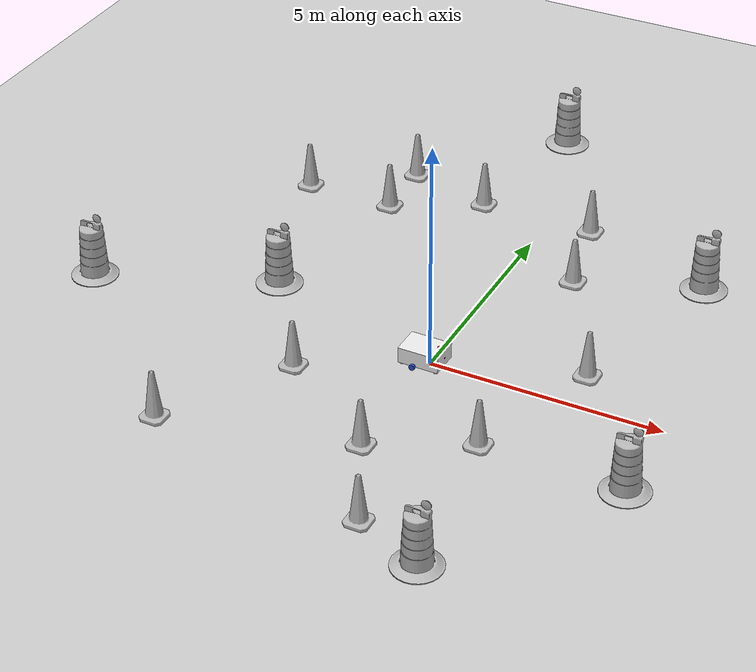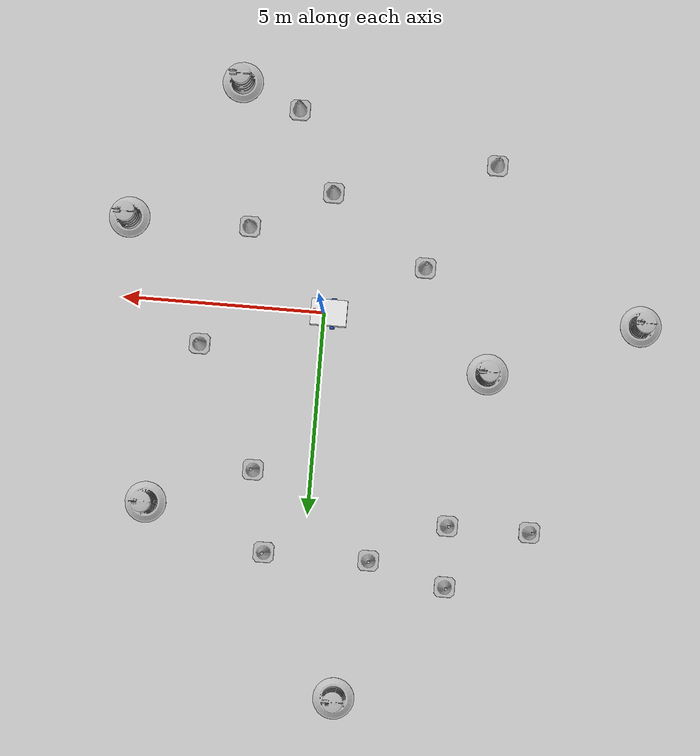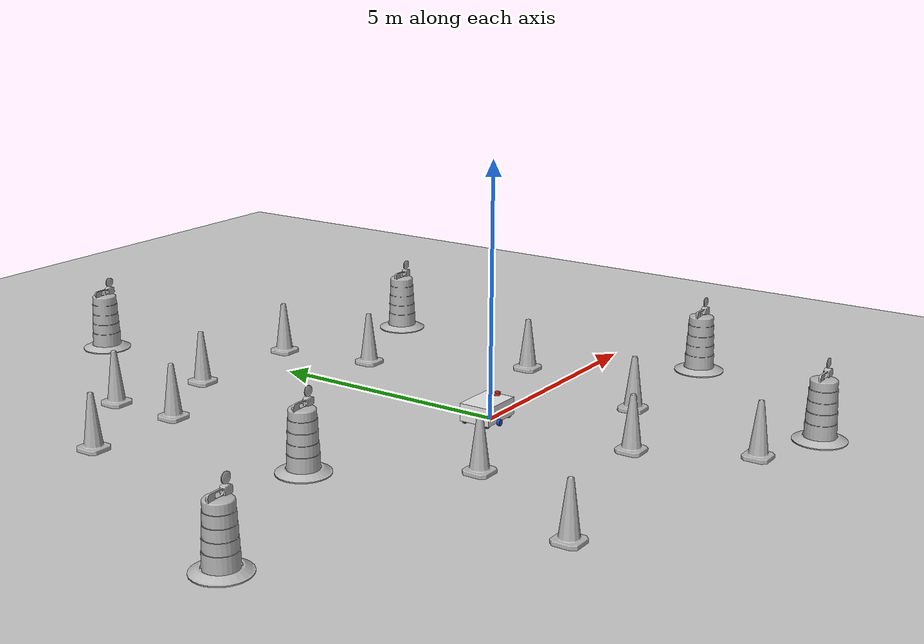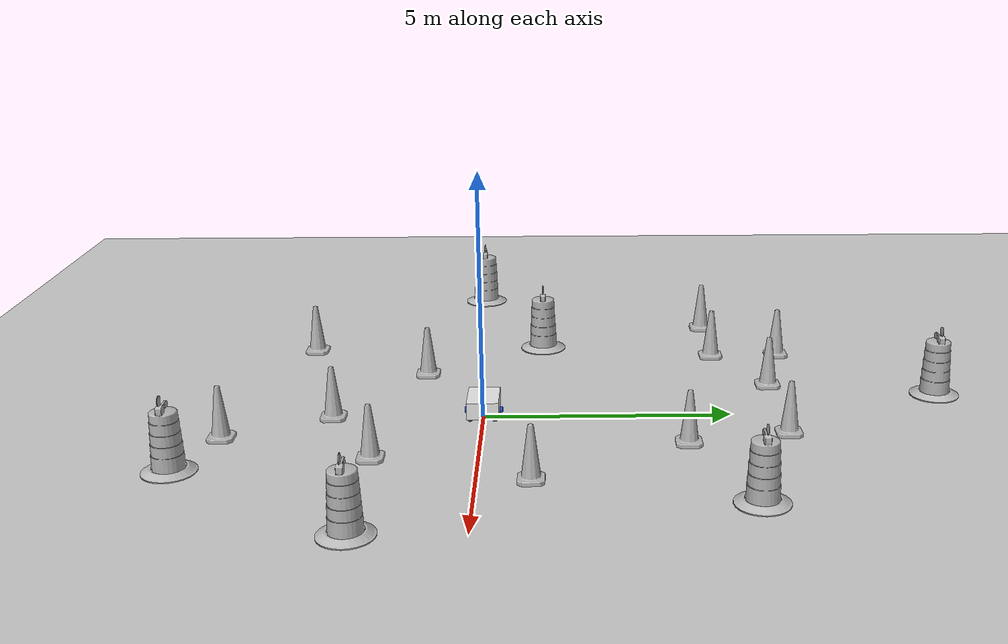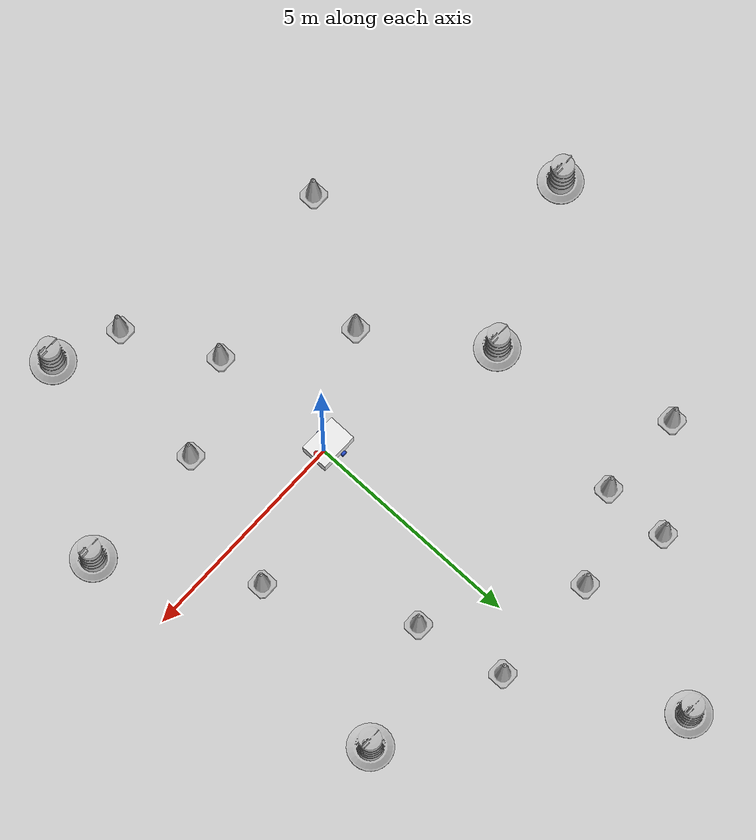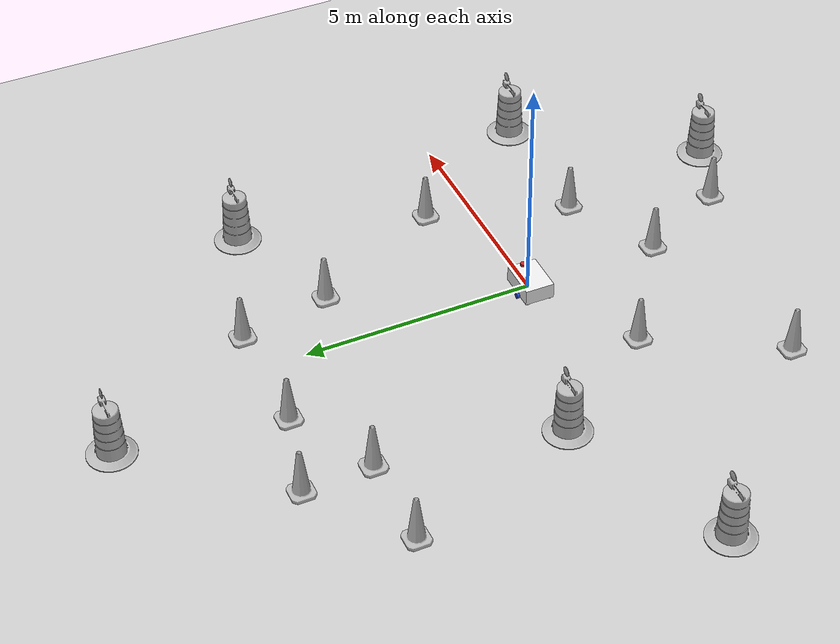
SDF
<sdf version="1.7">
 <world name="default">
  <light name="sun" type="directional">
   <pose>0 0 10 0 -0 0</pose>
   <diffuse>0.8 0.8 0.8 1</diffuse>
   <specular>0.2 0.2 0.2 1</specular>
   <attenuation>
    <range>1000</range>
    <constant>0.9</constant>
    <linear>0.01</linear>
    <quadratic>0.001</quadratic>
   </attenuation>
   <direction>-0.5 0.1 -0.9</direction>
   <spot><inner_angle>0</inner_angle><outer_angle>0</outer_angle><falloff>0</falloff></spot>
  </light>
  <model name="ground_plane">
   <static>1</static>
   <link name="link">
    <collision name="collision">
     <geometry><plane><normal>0 0 1</normal><size>100 100</size></plane></geometry>
     <surface>
      <contact><collide_bitmask>65535</collide_bitmask></contact>
      <friction><ode><mu>100</mu><mu2>50</mu2></ode></friction>
     </surface>
    </collision>
    <visual name="visual">
     <cast_shadows>0</cast_shadows>
     <geometry><plane><normal>0 0 1</normal><size>100 100</size></plane></geometry>
     <material>
      <script><uri>file://media/materials/scripts/gazebo.material</uri><name>Gazebo/Grey</name></script>
     </material>
    </visual>
   </link>
  </model>
  <gravity>0 0 -9.8</gravity>
  <magnetic_field>6e-06 2.3e-05 -4.2e-05</magnetic_field>
  <atmosphere type="adiabatic"/>
  <physics type="ode">
   <max_step_size>0.001</max_step_size>
   <real_time_factor>1</real_time_factor>
   <real_time_update_rate>1000</real_time_update_rate>
  </physics>
  <scene><ambient>0.4 0.4 0.4 1</ambient><background>0.7 0.7 0.7 1</background><shadows>1</shadows></scene>
  <spherical_coordinates>
   <surface_model>EARTH_WGS84</surface_model>
   <latitude_deg>0</latitude_deg>
   <longitude_deg>0</longitude_deg>
   <elevation>0</elevation>
   <heading_deg>0</heading_deg>
  </spherical_coordinates>
  <model name="my_bot">
   <link name="base_link">
    <inertial>
     <pose>0.004176 0 0.169176 0 -0 0</pose>
     <mass>8.5</mass>
     <inertia>
      <ixx>0.396651</ixx>
      <ixy>0</ixy>
      <ixz>-0.00748424</ixz>
      <iyy>0.695355</iyy>
      <iyz>0</iyz>
      <izz>0.895659</izz>
     </inertia>
    </inertial>
    <collision name="base_link_fixed_joint_lump__chassis_collision">
     <pose>0 0 0.175 0 -0 0</pose>
     <geometry><box><size>0.89 0.64 0.35</size></box></geometry>
    </collision>
    <collision name="base_link_fixed_joint_lump__back_caster_left_wheel_collision_1">
     <pose>-0.375 -0.25 0 0 -0 0</pose>
     <geometry><sphere><radius>0.0625</radius></sphere></geometry>
     <surface><friction><ode><mu>0.001</mu><mu2>0.001</mu2></ode></friction></surface>
    </collision>
    <collision name="base_link_fixed_joint_lump__back_caster_right_wheel_collision_2">
     <pose>-0.375 0.25 0 0 -0 0</pose>
     <geometry><sphere><radius>0.0625</radius></sphere></geometry>
    </collision>
    <collision name="base_link_fixed_joint_lump__front_caster_left_wheel_collision_3">
     <pose>0.375 0.25 0 0 -0 0</pose>
     <geometry><sphere><radius>0.0625</radius></sphere></geometry>
    </collision>
    <collision name="base_link_fixed_joint_lump__front_caster_wheel_collision_4">
     <pose>0.375 -0.25 0 0 -0 0</pose>
     <geometry><sphere><radius>0.0625</radius></sphere></geometry>
    </collision>
    <collision name="base_link_fixed_joint_lump__laser_frame_collision_5">
     <pose>0.355 0 0.38 0 -0 0</pose>
     <geometry><cylinder><length>0.06</length><radius>0.06265</radius></cylinder></geometry>
    </collision>
    <visual name="base_link_fixed_joint_lump__chassis_visual">
     <pose>0 0 0.175 0 -0 0</pose>
     <geometry><box><size>0.89 0.64 0.35</size></box></geometry>
     <material>
      <script><name>Gazebo/White</name><uri>file://media/materials/scripts/gazebo.material</uri></script>
     </material>
    </visual>
    <visual name="base_link_fixed_joint_lump__back_caster_left_wheel_visual_1">
     <pose>-0.375 -0.25 0 0 -0 0</pose>
     <geometry><sphere><radius>0.0625</radius></sphere></geometry>
     <material>
      <script><name>Gazebo/Black</name><uri>file://media/materials/scripts/gazebo.material</uri></script>
     </material>
    </visual>
    <visual name="base_link_fixed_joint_lump__back_caster_right_wheel_visual_2">
     <pose>-0.375 0.25 0 0 -0 0</pose>
     <geometry><sphere><radius>0.0625</radius></sphere></geometry>
     <material>
      <script><name>Gazebo/Black</name><uri>file://media/materials/scripts/gazebo.material</uri></script>
     </material>
    </visual>
    <visual name="base_link_fixed_joint_lump__camera_link_visual_3">
     <pose>0.45 0 0.18 0 -0 0</pose>
     <geometry><box><size>0.01 0.03 0.03</size></box></geometry>
     <material>
      <script><name>Gazebo/Red</name><uri>file://media/materials/scripts/gazebo.material</uri></script>
     </material>
    </visual>
    <visual name="base_link_fixed_joint_lump__front_caster_left_wheel_visual_4">
     <pose>0.375 0.25 0 0 -0 0</pose>
     <geometry><sphere><radius>0.0625</radius></sphere></geometry>
     <material>
      <script><name>Gazebo/Black</name><uri>file://media/materials/scripts/gazebo.material</uri></script>
     </material>
    </visual>
    <visual name="base_link_fixed_joint_lump__front_caster_wheel_visual_5">
     <pose>0.375 -0.25 0 0 -0 0</pose>
     <geometry><sphere><radius>0.0625</radius></sphere></geometry>
     <material>
      <script><name>Gazebo/Black</name><uri>file://media/materials/scripts/gazebo.material</uri></script>
     </material>
    </visual>
    <visual name="base_link_fixed_joint_lump__laser_frame_visual_6">
     <pose>0.355 0 0.38 0 -0 0</pose>
     <geometry><cylinder><length>0.06</length><radius>0.06265</radius></cylinder></geometry>
     <material>
      <script><name>Gazebo/Red</name><uri>file://media/materials/scripts/gazebo.material</uri></script>
     </material>
    </visual>
    <sensor name="camera" type="camera">
     <visualize>1</visualize>
     <update_rate>10</update_rate>
     <camera>
      <horizontal_fov>1.089</horizontal_fov>
      <image><format>R8G8B8</format><width>640</width><height>480</height></image>
      <clip><near>0.05</near><far>8</far></clip>
     </camera>
     <plugin name="camera_controller" filename="libgazebo_ros_camera.so">
      <frame_name>camera_link_optical</frame_name>
     </plugin>
     <pose>0.45 0 0.18 0 -0 0</pose>
    </sensor>
    <sensor name="laser" type="ray">
     <visualize>1</visualize>
     <update_rate>10</update_rate>
     <ray>
      <scan>
       <horizontal>
        <samples>360</samples>
        <min_angle>-3.14</min_angle>
        <max_angle>3.14</max_angle>
        <resolution>1</resolution>
       </horizontal>
       <vertical><samples>1</samples><min_angle>0</min_angle><max_angle>0</max_angle></vertical>
      </scan>
      <range><min>0.3</min><max>12</max></range>
     </ray>
     <plugin name="laser_controller" filename="libgazebo_ros_ray_sensor.so">
      <ros><argument>~/out:=scan</argument></ros>
      <output_type>sensor_msgs/LaserScan</output_type>
      <frame_name>laser_frame</frame_name>
     </plugin>
     <pose>0.355 0 0.38 0 -0 0</pose>
    </sensor>
   </link>
   <joint name="left_wheel_joint" type="revolute">
    <pose relative_to="base_link">-0.103 0.35 0 -1.5708 0 0</pose>
    <parent>base_link</parent>
    <child>left_wheel</child>
    <axis>
     <xyz>0 0 1</xyz>
     <limit><lower>-1e+16</lower><upper>1e+16</upper></limit>
     <dynamics><spring_reference>0</spring_reference><spring_stiffness>0</spring_stiffness></dynamics>
    </axis>
   </joint>
   <link name="left_wheel">
    <pose relative_to="left_wheel_joint">0 0 0 0 -0 0</pose>
    <inertial>
     <mass>0.1</mass>
     <inertia>
      <ixx>0.000127969</ixx>
      <ixy>0</ixy>
      <ixz>0</ixz>
      <iyy>0.000127969</iyy>
      <iyz>0</iyz>
      <izz>0.000195938</izz>
     </inertia>
    </inertial>
    <collision name="left_wheel_collision">
     <geometry><cylinder><length>0.06</length><radius>0.0626</radius></cylinder></geometry>
    </collision>
    <visual name="left_wheel_visual">
     <geometry><cylinder><length>0.06</length><radius>0.0626</radius></cylinder></geometry>
     <material>
      <script><name>Gazebo/Blue</name><uri>file://media/materials/scripts/gazebo.material</uri></script>
     </material>
    </visual>
   </link>
   <joint name="right_wheel_joint" type="revolute">
    <pose relative_to="base_link">-0.103 -0.35 0 1.5708 -0 0</pose>
    <parent>base_link</parent>
    <child>right_wheel</child>
    <axis>
     <xyz>0 0 -1</xyz>
     <limit><lower>-1e+16</lower><upper>1e+16</upper></limit>
     <dynamics><spring_reference>0</spring_reference><spring_stiffness>0</spring_stiffness></dynamics>
    </axis>
   </joint>
   <link name="right_wheel">
    <pose relative_to="right_wheel_joint">0 0 0 0 -0 0</pose>
    <inertial>
     <mass>0.1</mass>
     <inertia>
      <ixx>0.000127969</ixx>
      <ixy>0</ixy>
      <ixz>0</ixz>
      <iyy>0.000127969</iyy>
      <iyz>0</iyz>
      <izz>0.000195938</izz>
     </inertia>
    </inertial>
    <collision name="right_wheel_collision">
     <geometry><cylinder><length>0.06</length><radius>0.0626</radius></cylinder></geometry>
    </collision>
    <visual name="right_wheel_visual">
     <geometry><cylinder><length>0.06</length><radius>0.0626</radius></cylinder></geometry>
     <material>
      <script><name>Gazebo/Blue</name><uri>file://media/materials/scripts/gazebo.material</uri></script>
     </material>
    </visual>
   </link>
   <static>0</static>
   <plugin name="gazebo_ros2_control" filename="libgazebo_ros2_control.so">
    <parameters>/home/furkan/dev_ws/install/murphy_bot/share/murphy_bot/config/my_controllers.yaml</parameters>
    <parameters>/home/furkan/dev_ws/install/murphy_bot/share/murphy_bot/config/gaz_ros2_ctl_use_sim.yaml</parameters>
   </plugin>
   <pose>-0.127209 0.002681 0.06257 0 0.000186 -0.007531</pose>
  </model>
  <model name="Construction Barrel">
   <link name="link">
    <inertial>
     <pose>0 0 0.4 0 -0 0</pose>
     <mass>500</mass>
     <inertia><ixx>51.2096</ixx><iyy>51.2096</iyy><izz>25</izz><ixy>0</ixy><ixz>0</ixz><iyz>0</iyz></inertia>
    </inertial>
    <collision name="collision">
     <geometry><mesh><uri>model://construction_barrel/meshes/construction_barrel.dae</uri></mesh></geometry>
    </collision>
    <visual name="visual">
     <geometry><mesh><uri>model://construction_barrel/meshes/construction_barrel.dae</uri></mesh></geometry>
    </visual>
   </link>
   <pose>-4.14871 1.1927 -0 0 0 -2.5e-05</pose>
  </model>
  <model name="Construction Cone">
   <link name="link">
    <collision name="collision">
     <geometry>
      <mesh><scale>10 10 10</scale><uri>model://construction_cone/meshes/construction_cone.dae</uri></mesh>
     </geometry>
    </collision>
    <visual name="visual">
     <geometry>
      <mesh><scale>10 10 10</scale><uri>model://construction_cone/meshes/construction_cone.dae</uri></mesh>
     </geometry>
    </visual>
    <inertial>
     <inertia><ixx>1</ixx><ixy>0</ixy><ixz>0</ixz><iyy>1</iyy><iyz>0</iyz><izz>1</izz></inertia>
     <mass>1</mass>
    </inertial>
   </link>
   <pose>-2.41385 -1.31454 0 -0 -0 -0</pose>
  </model>
  <model name="Construction Cone_clone">
   <link name="link">
    <collision name="collision">
     <geometry>
      <mesh><scale>10 10 10</scale><uri>model://construction_cone/meshes/construction_cone.dae</uri></mesh>
     </geometry>
    </collision>
    <visual name="visual">
     <geometry>
      <mesh><scale>10 10 10</scale><uri>model://construction_cone/meshes/construction_cone.dae</uri></mesh>
     </geometry>
    </visual>
    <inertial>
     <inertia><ixx>1</ixx><ixy>0</ixy><ixz>0</ixz><iyy>1</iyy><iyz>0</iyz><izz>1</izz></inertia>
     <mass>1</mass>
    </inertial>
   </link>
   <pose>-5.47303 5 -0 0 -1e-06 0</pose>
  </model>
  <model name="Construction Cone_clone_0">
   <link name="link">
    <collision name="collision">
     <geometry>
      <mesh><scale>10 10 10</scale><uri>model://construction_cone/meshes/construction_cone.dae</uri></mesh>
     </geometry>
    </collision>
    <visual name="visual">
     <geometry>
      <mesh><scale>10 10 10</scale><uri>model://construction_cone/meshes/construction_cone.dae</uri></mesh>
     </geometry>
    </visual>
    <inertial>
     <inertia><ixx>1</ixx><ixy>0</ixy><ixz>0</ixz><iyy>1</iyy><iyz>0</iyz><izz>1</izz></inertia>
     <mass>1</mass>
    </inertial>
   </link>
   <pose>-3.45127 5 -1e-05 -1e-06 0 0</pose>
  </model>
  <model name="Construction Cone_clone_1">
   <link name="link">
    <collision name="collision">
     <geometry>
      <mesh><scale>10 10 10</scale><uri>model://construction_cone/meshes/construction_cone.dae</uri></mesh>
     </geometry>
    </collision>
    <visual name="visual">
     <geometry>
      <mesh><scale>10 10 10</scale><uri>model://construction_cone/meshes/construction_cone.dae</uri></mesh>
     </geometry>
    </visual>
    <inertial>
     <inertia><ixx>1</ixx><ixy>0</ixy><ixz>0</ixz><iyy>1</iyy><iyz>0</iyz><izz>1</izz></inertia>
     <mass>1</mass>
    </inertial>
   </link>
   <pose>-1.58364 6 -0 0 -0 0</pose>
  </model>
  <model name="Construction Cone_clone_2">
   <link name="link">
    <collision name="collision">
     <geometry>
      <mesh><scale>10 10 10</scale><uri>model://construction_cone/meshes/construction_cone.dae</uri></mesh>
     </geometry>
    </collision>
    <visual name="visual">
     <geometry>
      <mesh><scale>10 10 10</scale><uri>model://construction_cone/meshes/construction_cone.dae</uri></mesh>
     </geometry>
    </visual>
    <inertial>
     <inertia><ixx>1</ixx><ixy>0</ixy><ixz>0</ixz><iyy>1</iyy><iyz>0</iyz><izz>1</izz></inertia>
     <mass>1</mass>
    </inertial>
   </link>
   <pose>-3.49885 6.49463 -0 0 -0 0</pose>
  </model>
  <model name="Construction Cone_clone_3">
   <link name="link">
    <collision name="collision">
     <geometry>
      <mesh><scale>10 10 10</scale><uri>model://construction_cone/meshes/construction_cone.dae</uri></mesh>
     </geometry>
    </collision>
    <visual name="visual">
     <geometry>
      <mesh><scale>10 10 10</scale><uri>model://construction_cone/meshes/construction_cone.dae</uri></mesh>
     </geometry>
    </visual>
    <inertial>
     <inertia><ixx>1</ixx><ixy>0</ixy><ixz>0</ixz><iyy>1</iyy><iyz>0</iyz><izz>1</izz></inertia>
     <mass>1</mass>
    </inertial>
   </link>
   <pose>1 6 0 -0 -0 -0</pose>
  </model>
  <model name="Construction Cone_clone_4">
   <link name="link">
    <collision name="collision">
     <geometry>
      <mesh><scale>10 10 10</scale><uri>model://construction_cone/meshes/construction_cone.dae</uri></mesh>
     </geometry>
    </collision>
    <visual name="visual">
     <geometry>
      <mesh><scale>10 10 10</scale><uri>model://construction_cone/meshes/construction_cone.dae</uri></mesh>
     </geometry>
    </visual>
    <inertial>
     <inertia><ixx>1</ixx><ixy>0</ixy><ixz>0</ixz><iyy>1</iyy><iyz>0</iyz><izz>1</izz></inertia>
     <mass>1</mass>
    </inertial>
   </link>
   <pose>-0 -3 -0 0 -0 0</pose>
  </model>
  <model name="Construction Cone_clone_5">
   <link name="link">
    <collision name="collision">
     <geometry>
      <mesh><scale>10 10 10</scale><uri>model://construction_cone/meshes/construction_cone.dae</uri></mesh>
     </geometry>
    </collision>
    <visual name="visual">
     <geometry>
      <mesh><scale>10 10 10</scale><uri>model://construction_cone/meshes/construction_cone.dae</uri></mesh>
     </geometry>
    </visual>
    <inertial>
     <inertia><ixx>1</ixx><ixy>0</ixy><ixz>0</ixz><iyy>1</iyy><iyz>0</iyz><izz>1</izz></inertia>
     <mass>1</mass>
    </inertial>
   </link>
   <pose>2 -2 -0 0 -1e-06 0</pose>
  </model>
  <model name="Construction Cone_clone_6">
   <link name="link">
    <collision name="collision">
     <geometry>
      <mesh><scale>10 10 10</scale><uri>model://construction_cone/meshes/construction_cone.dae</uri></mesh>
     </geometry>
    </collision>
    <visual name="visual">
     <geometry>
      <mesh><scale>10 10 10</scale><uri>model://construction_cone/meshes/construction_cone.dae</uri></mesh>
     </geometry>
    </visual>
    <inertial>
     <inertia><ixx>1</ixx><ixy>0</ixy><ixz>0</ixz><iyy>1</iyy><iyz>0</iyz><izz>1</izz></inertia>
     <mass>1</mass>
    </inertial>
   </link>
   <pose>3 1 -0 0 -0 0</pose>
  </model>
  <model name="Construction Cone_clone_7">
   <link name="link">
    <collision name="collision">
     <geometry>
      <mesh><scale>10 10 10</scale><uri>model://construction_cone/meshes/construction_cone.dae</uri></mesh>
     </geometry>
    </collision>
    <visual name="visual">
     <geometry>
      <mesh><scale>10 10 10</scale><uri>model://construction_cone/meshes/construction_cone.dae</uri></mesh>
     </geometry>
    </visual>
    <inertial>
     <inertia><ixx>1</ixx><ixy>0</ixy><ixz>0</ixz><iyy>1</iyy><iyz>0</iyz><izz>1</izz></inertia>
     <mass>1</mass>
    </inertial>
   </link>
   <pose>1.42736 4 -0 0 -0 0</pose>
  </model>
  <model name="Construction Barrel_0">
   <link name="link">
    <inertial>
     <pose>0 0 0.4 0 -0 0</pose>
     <mass>500</mass>
     <inertia><ixx>51.2096</ixx><iyy>51.2096</iyy><izz>25</izz><ixy>0</ixy><ixz>0</ixz><iyz>0</iyz></inertia>
    </inertial>
    <collision name="collision">
     <geometry><mesh><uri>model://construction_barrel/meshes/construction_barrel.dae</uri></mesh></geometry>
    </collision>
    <visual name="visual">
     <geometry><mesh><uri>model://construction_barrel/meshes/construction_barrel.dae</uri></mesh></geometry>
    </visual>
   </link>
   <pose>-7.83625 -0.291337 -0 1e-06 -1e-06 -1.2e-05</pose>
  </model>
  <model name="Construction Cone_clone_8">
   <link name="link">
    <collision name="collision">
     <geometry>
      <mesh><scale>10 10 10</scale><uri>model://construction_cone/meshes/construction_cone.dae</uri></mesh>
     </geometry>
    </collision>
    <visual name="visual">
     <geometry>
      <mesh><scale>10 10 10</scale><uri>model://construction_cone/meshes/construction_cone.dae</uri></mesh>
     </geometry>
    </visual>
    <inertial>
     <inertia><ixx>1</ixx><ixy>0</ixy><ixz>0</ixz><iyy>1</iyy><iyz>0</iyz><izz>1</izz></inertia>
     <mass>1</mass>
    </inertial>
   </link>
   <pose>1 -5 -6e-06 2e-06 -0 0</pose>
  </model>
  <model name="Construction Cone_clone_9">
   <link name="link">
    <collision name="collision">
     <geometry>
      <mesh><scale>10 10 10</scale><uri>model://construction_cone/meshes/construction_cone.dae</uri></mesh>
     </geometry>
    </collision>
    <visual name="visual">
     <geometry>
      <mesh><scale>10 10 10</scale><uri>model://construction_cone/meshes/construction_cone.dae</uri></mesh>
     </geometry>
    </visual>
    <inertial>
     <inertia><ixx>1</ixx><ixy>0</ixy><ixz>0</ixz><iyy>1</iyy><iyz>0</iyz><izz>1</izz></inertia>
     <mass>1</mass>
    </inertial>
   </link>
   <pose>-4 -4 -0 0 -0 0</pose>
  </model>
  <model name="Construction Barrel_0_clone">
   <link name="link">
    <inertial>
     <pose>0 0 0.4 0 -0 0</pose>
     <mass>500</mass>
     <inertia><ixx>51.2096</ixx><iyy>51.2096</iyy><izz>25</izz><ixy>0</ixy><ixz>0</ixz><iyz>0</iyz></inertia>
    </inertial>
    <collision name="collision">
     <geometry><mesh><uri>model://construction_barrel/meshes/construction_barrel.dae</uri></mesh></geometry>
    </collision>
    <visual name="visual">
     <geometry><mesh><uri>model://construction_barrel/meshes/construction_barrel.dae</uri></mesh></geometry>
    </visual>
   </link>
   <pose>4.99998 -2.00001 -0 1e-06 -1e-06 -1.3e-05</pose>
  </model>
  <model name="Construction Barrel_0_clone_0">
   <link name="link">
    <inertial>
     <pose>0 0 0.4 0 -0 0</pose>
     <mass>500</mass>
     <inertia><ixx>51.2096</ixx><iyy>51.2096</iyy><izz>25</izz><ixy>0</ixy><ixz>0</ixz><iyz>0</iyz></inertia>
    </inertial>
    <collision name="collision">
     <geometry><mesh><uri>model://construction_barrel/meshes/construction_barrel.dae</uri></mesh></geometry>
    </collision>
    <visual name="visual">
     <geometry><mesh><uri>model://construction_barrel/meshes/construction_barrel.dae</uri></mesh></geometry>
    </visual>
   </link>
   <pose>3.99999 4.99999 -1e-06 0 5e-06 -1.1e-05</pose>
  </model>
  <model name="Construction Barrel_0_clone_1">
   <link name="link">
    <inertial>
     <pose>0 0 0.4 0 -0 0</pose>
     <mass>500</mass>
     <inertia><ixx>51.2096</ixx><iyy>51.2096</iyy><izz>25</izz><ixy>0</ixy><ixz>0</ixz><iyz>0</iyz></inertia>
    </inertial>
    <collision name="collision">
     <geometry><mesh><uri>model://construction_barrel/meshes/construction_barrel.dae</uri></mesh></geometry>
    </collision>
    <visual name="visual">
     <geometry><mesh><uri>model://construction_barrel/meshes/construction_barrel.dae</uri></mesh></geometry>
    </visual>
   </link>
   <pose>-1.00001 9.424 -2e-06 0 7e-06 -9e-06</pose>
  </model>
  <model name="Construction Barrel_0_clone_2">
   <link name="link">
    <inertial>
     <pose>0 0 0.4 0 -0 0</pose>
     <mass>500</mass>
     <inertia><ixx>51.2096</ixx><iyy>51.2096</iyy><izz>25</izz><ixy>0</ixy><ixz>0</ixz><iyz>0</iyz></inertia>
    </inertial>
    <collision name="collision">
     <geometry><mesh><uri>model://construction_barrel/meshes/construction_barrel.dae</uri></mesh></geometry>
    </collision>
    <visual name="visual">
     <geometry><mesh><uri>model://construction_barrel/meshes/construction_barrel.dae</uri></mesh></geometry>
    </visual>
   </link>
   <pose>2.47213 -5.58396 -1e-06 3e-06 1e-05 -8e-06</pose>
  </model>
 </world>
</sdf>
